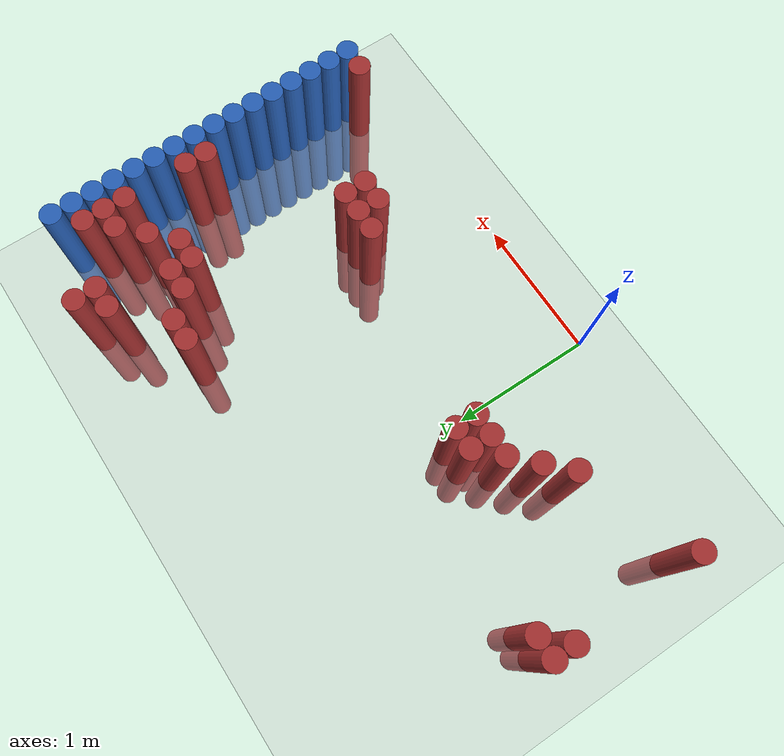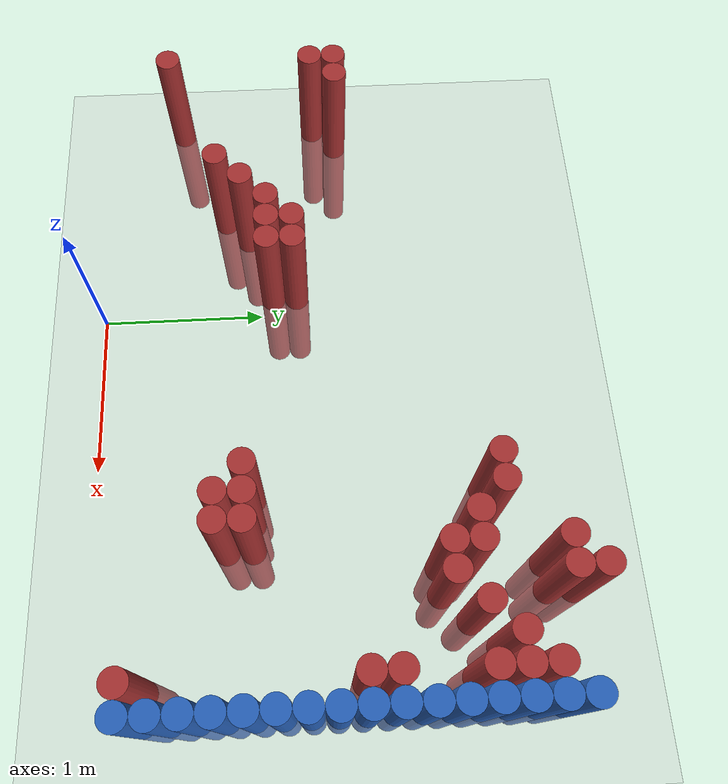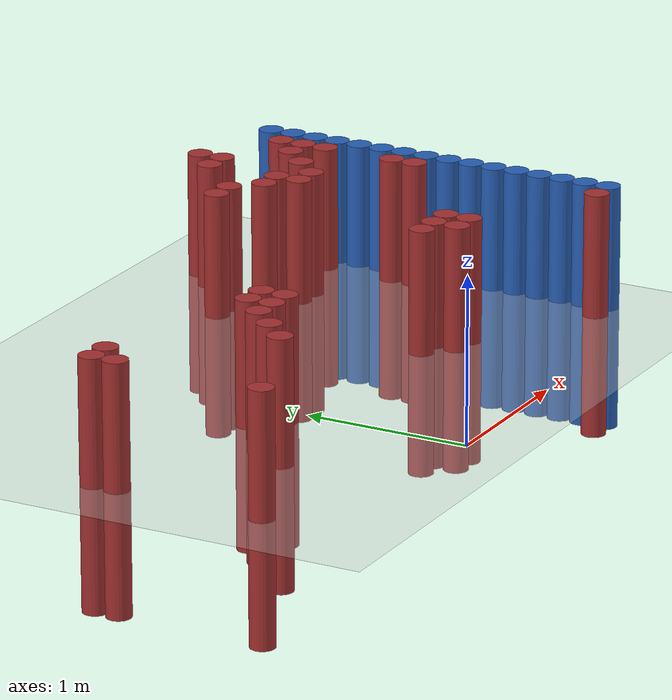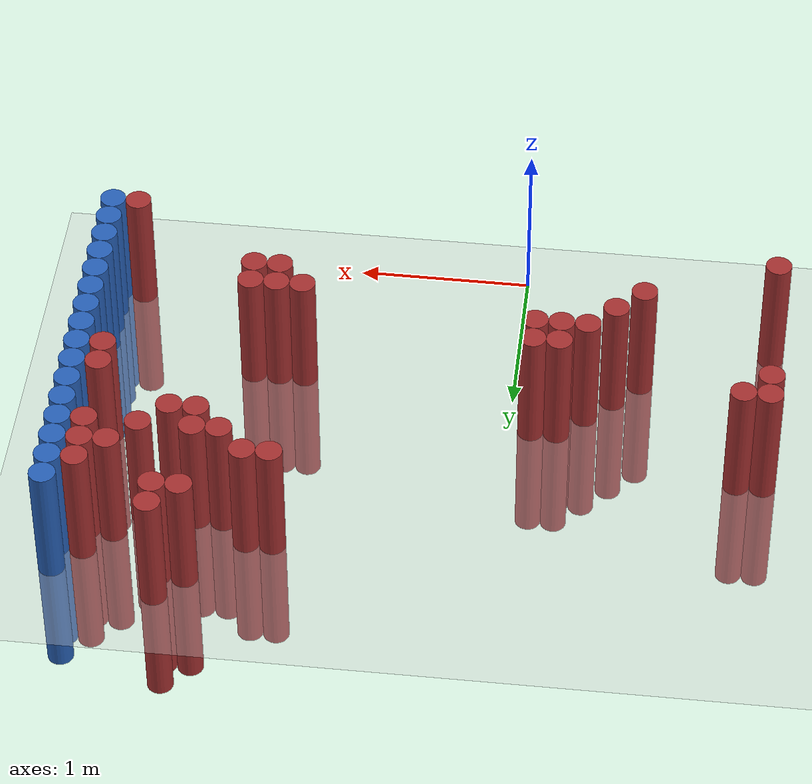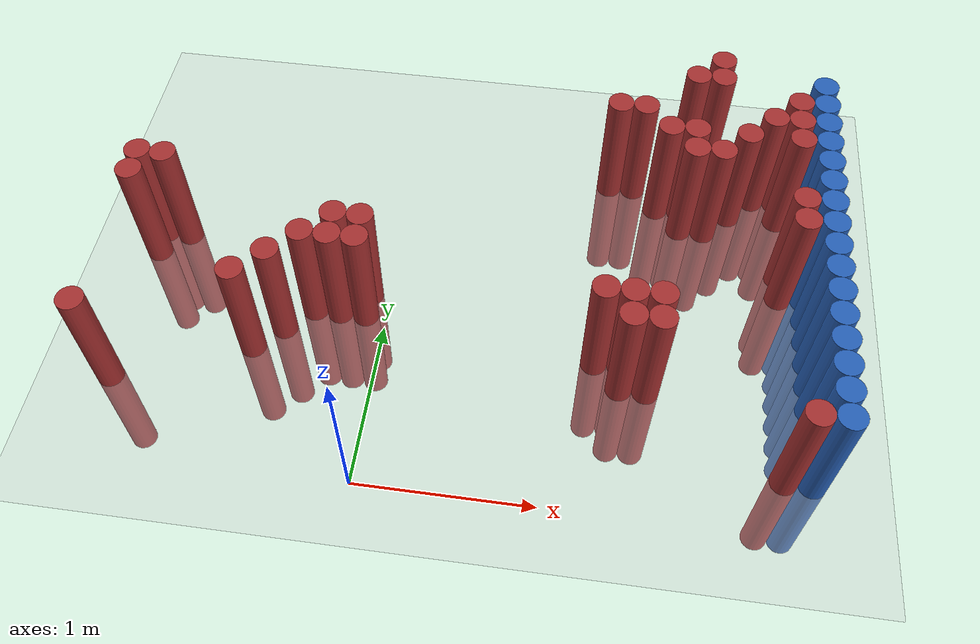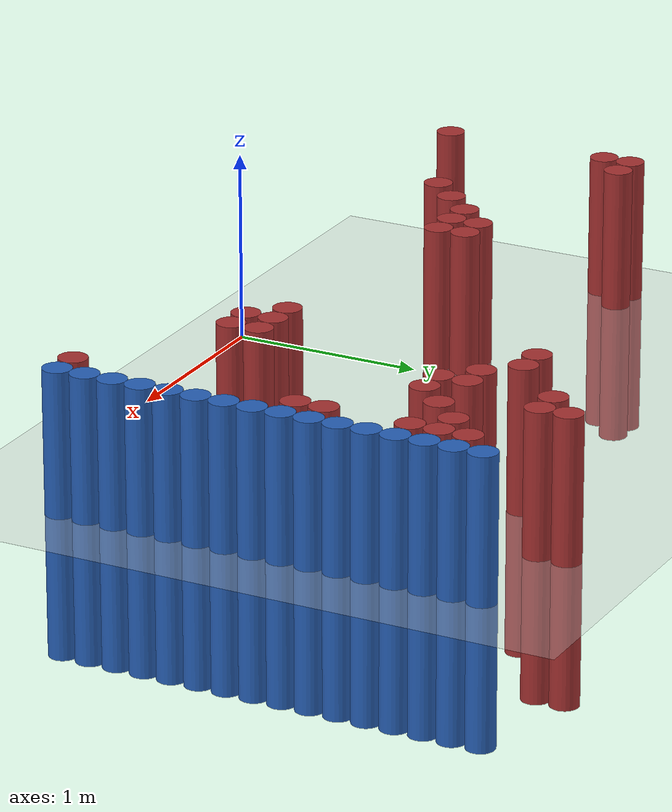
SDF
<sdf version="1.6">
 <world name="default">
  <model name="ground_plane">
   <static>1</static>
   <link name="link">
    <collision name="collision">
     <geometry><plane><normal>0 0 1</normal><size>100 100</size></plane></geometry>
     <surface><friction><ode><mu>100</mu><mu2>50</mu2></ode></friction></surface>
    </collision>
    <visual name="visual">
     <cast_shadows>0</cast_shadows>
     <geometry><plane><normal>0 0 1</normal><size>100 100</size></plane></geometry>
     <material>
      <script><uri>file://media/materials/scripts/gazebo.material</uri><name>Gazebo/Grey</name></script>
     </material>
    </visual>
   </link>
  </model>
  <model name="unit_cylinder_149">
   <static>1</static>
   <pose>-1.475000 0.475000 0.000000 0.000000 0.000000 0.000000</pose>
   <link name="link">
    <inertial>
     <mass>1</mass>
     <inertia><ixx>0.145833</ixx><ixy>0</ixy><ixz>0</ixz><iyy>0.145833</iyy><iyz>0</iyz><izz>0.125</izz></inertia>
    </inertial>
    <collision name="collision">
     <geometry><cylinder><radius>0.075000</radius><length>1.5</length></cylinder></geometry>
    </collision>
    <visual name="visual">
     <geometry><cylinder><radius>0.075000</radius><length>1.5</length></cylinder></geometry>
     <material>
      <ambient>0.648000 0.192000 0.192000 1</ambient>
      <diffuse>0.648000 0.192000 0.192000 1</diffuse>
     </material>
     <material>
      <script><name>Gazebo/Grey</name><uri>file://media/materials/scripts/gazebo.material</uri></script>
     </material>
    </visual>
   </link>
  </model>
  <model name="unit_cylinder_150">
   <static>1</static>
   <pose>-1.475000 1.375000 0.000000 0.000000 0.000000 0.000000</pose>
   <link name="link">
    <inertial>
     <mass>1</mass>
     <inertia><ixx>0.145833</ixx><ixy>0</ixy><ixz>0</ixz><iyy>0.145833</iyy><iyz>0</iyz><izz>0.125</izz></inertia>
    </inertial>
    <collision name="collision">
     <geometry><cylinder><radius>0.075000</radius><length>1.5</length></cylinder></geometry>
    </collision>
    <visual name="visual">
     <geometry><cylinder><radius>0.075000</radius><length>1.5</length></cylinder></geometry>
     <material>
      <ambient>0.648000 0.192000 0.192000 1</ambient>
      <diffuse>0.648000 0.192000 0.192000 1</diffuse>
     </material>
     <material>
      <script><name>Gazebo/Grey</name><uri>file://media/materials/scripts/gazebo.material</uri></script>
     </material>
    </visual>
   </link>
  </model>
  <model name="unit_cylinder_151">
   <static>1</static>
   <pose>-1.475000 1.525000 0.000000 0.000000 0.000000 0.000000</pose>
   <link name="link">
    <inertial>
     <mass>1</mass>
     <inertia><ixx>0.145833</ixx><ixy>0</ixy><ixz>0</ixz><iyy>0.145833</iyy><iyz>0</iyz><izz>0.125</izz></inertia>
    </inertial>
    <collision name="collision">
     <geometry><cylinder><radius>0.075000</radius><length>1.5</length></cylinder></geometry>
    </collision>
    <visual name="visual">
     <geometry><cylinder><radius>0.075000</radius><length>1.5</length></cylinder></geometry>
     <material>
      <ambient>0.648000 0.192000 0.192000 1</ambient>
      <diffuse>0.648000 0.192000 0.192000 1</diffuse>
     </material>
     <material>
      <script><name>Gazebo/Grey</name><uri>file://media/materials/scripts/gazebo.material</uri></script>
     </material>
    </visual>
   </link>
  </model>
  <model name="unit_cylinder_154">
   <static>1</static>
   <pose>-1.325000 1.525000 0.000000 0.000000 0.000000 0.000000</pose>
   <link name="link">
    <inertial>
     <mass>1</mass>
     <inertia><ixx>0.145833</ixx><ixy>0</ixy><ixz>0</ixz><iyy>0.145833</iyy><iyz>0</iyz><izz>0.125</izz></inertia>
    </inertial>
    <collision name="collision">
     <geometry><cylinder><radius>0.075000</radius><length>1.5</length></cylinder></geometry>
    </collision>
    <visual name="visual">
     <geometry><cylinder><radius>0.075000</radius><length>1.5</length></cylinder></geometry>
     <material>
      <ambient>0.648000 0.192000 0.192000 1</ambient>
      <diffuse>0.648000 0.192000 0.192000 1</diffuse>
     </material>
     <material>
      <script><name>Gazebo/Grey</name><uri>file://media/materials/scripts/gazebo.material</uri></script>
     </material>
    </visual>
   </link>
  </model>
  <model name="unit_cylinder_155">
   <static>1</static>
   <pose>-0.725000 0.775000 0.000000 0.000000 0.000000 0.000000</pose>
   <link name="link">
    <inertial>
     <mass>1</mass>
     <inertia><ixx>0.145833</ixx><ixy>0</ixy><ixz>0</ixz><iyy>0.145833</iyy><iyz>0</iyz><izz>0.125</izz></inertia>
    </inertial>
    <collision name="collision">
     <geometry><cylinder><radius>0.075000</radius><length>1.5</length></cylinder></geometry>
    </collision>
    <visual name="visual">
     <geometry><cylinder><radius>0.075000</radius><length>1.5</length></cylinder></geometry>
     <material>
      <ambient>0.648000 0.192000 0.192000 1</ambient>
      <diffuse>0.648000 0.192000 0.192000 1</diffuse>
     </material>
     <material>
      <script><name>Gazebo/Grey</name><uri>file://media/materials/scripts/gazebo.material</uri></script>
     </material>
    </visual>
   </link>
  </model>
  <model name="unit_cylinder_156">
   <static>1</static>
   <pose>-0.575000 0.925000 0.000000 0.000000 0.000000 0.000000</pose>
   <link name="link">
    <inertial>
     <mass>1</mass>
     <inertia><ixx>0.145833</ixx><ixy>0</ixy><ixz>0</ixz><iyy>0.145833</iyy><iyz>0</iyz><izz>0.125</izz></inertia>
    </inertial>
    <collision name="collision">
     <geometry><cylinder><radius>0.075000</radius><length>1.5</length></cylinder></geometry>
    </collision>
    <visual name="visual">
     <geometry><cylinder><radius>0.075000</radius><length>1.5</length></cylinder></geometry>
     <material>
      <ambient>0.648000 0.192000 0.192000 1</ambient>
      <diffuse>0.648000 0.192000 0.192000 1</diffuse>
     </material>
     <material>
      <script><name>Gazebo/Grey</name><uri>file://media/materials/scripts/gazebo.material</uri></script>
     </material>
    </visual>
   </link>
  </model>
  <model name="unit_cylinder_157">
   <static>1</static>
   <pose>-0.425000 1.075000 0.000000 0.000000 0.000000 0.000000</pose>
   <link name="link">
    <inertial>
     <mass>1</mass>
     <inertia><ixx>0.145833</ixx><ixy>0</ixy><ixz>0</ixz><iyy>0.145833</iyy><iyz>0</iyz><izz>0.125</izz></inertia>
    </inertial>
    <collision name="collision">
     <geometry><cylinder><radius>0.075000</radius><length>1.5</length></cylinder></geometry>
    </collision>
    <visual name="visual">
     <geometry><cylinder><radius>0.075000</radius><length>1.5</length></cylinder></geometry>
     <material>
      <ambient>0.648000 0.192000 0.192000 1</ambient>
      <diffuse>0.648000 0.192000 0.192000 1</diffuse>
     </material>
     <material>
      <script><name>Gazebo/Grey</name><uri>file://media/materials/scripts/gazebo.material</uri></script>
     </material>
    </visual>
   </link>
  </model>
  <model name="unit_cylinder_158">
   <static>1</static>
   <pose>-0.275000 1.075000 0.000000 0.000000 0.000000 0.000000</pose>
   <link name="link">
    <inertial>
     <mass>1</mass>
     <inertia><ixx>0.145833</ixx><ixy>0</ixy><ixz>0</ixz><iyy>0.145833</iyy><iyz>0</iyz><izz>0.125</izz></inertia>
    </inertial>
    <collision name="collision">
     <geometry><cylinder><radius>0.075000</radius><length>1.5</length></cylinder></geometry>
    </collision>
    <visual name="visual">
     <geometry><cylinder><radius>0.075000</radius><length>1.5</length></cylinder></geometry>
     <material>
      <ambient>0.648000 0.192000 0.192000 1</ambient>
      <diffuse>0.648000 0.192000 0.192000 1</diffuse>
     </material>
     <material>
      <script><name>Gazebo/Grey</name><uri>file://media/materials/scripts/gazebo.material</uri></script>
     </material>
    </visual>
   </link>
  </model>
  <model name="unit_cylinder_159">
   <static>1</static>
   <pose>-0.275000 1.225000 0.000000 0.000000 0.000000 0.000000</pose>
   <link name="link">
    <inertial>
     <mass>1</mass>
     <inertia><ixx>0.145833</ixx><ixy>0</ixy><ixz>0</ixz><iyy>0.145833</iyy><iyz>0</iyz><izz>0.125</izz></inertia>
    </inertial>
    <collision name="collision">
     <geometry><cylinder><radius>0.075000</radius><length>1.5</length></cylinder></geometry>
    </collision>
    <visual name="visual">
     <geometry><cylinder><radius>0.075000</radius><length>1.5</length></cylinder></geometry>
     <material>
      <ambient>0.648000 0.192000 0.192000 1</ambient>
      <diffuse>0.648000 0.192000 0.192000 1</diffuse>
     </material>
     <material>
      <script><name>Gazebo/Grey</name><uri>file://media/materials/scripts/gazebo.material</uri></script>
     </material>
    </visual>
   </link>
  </model>
  <model name="unit_cylinder_162">
   <static>1</static>
   <pose>-0.125000 1.075000 0.000000 0.000000 0.000000 0.000000</pose>
   <link name="link">
    <inertial>
     <mass>1</mass>
     <inertia><ixx>0.145833</ixx><ixy>0</ixy><ixz>0</ixz><iyy>0.145833</iyy><iyz>0</iyz><izz>0.125</izz></inertia>
    </inertial>
    <collision name="collision">
     <geometry><cylinder><radius>0.075000</radius><length>1.5</length></cylinder></geometry>
    </collision>
    <visual name="visual">
     <geometry><cylinder><radius>0.075000</radius><length>1.5</length></cylinder></geometry>
     <material>
      <ambient>0.648000 0.192000 0.192000 1</ambient>
      <diffuse>0.648000 0.192000 0.192000 1</diffuse>
     </material>
     <material>
      <script><name>Gazebo/Grey</name><uri>file://media/materials/scripts/gazebo.material</uri></script>
     </material>
    </visual>
   </link>
  </model>
  <model name="unit_cylinder_163">
   <static>1</static>
   <pose>-0.125000 1.225000 0.000000 0.000000 0.000000 0.000000</pose>
   <link name="link">
    <inertial>
     <mass>1</mass>
     <inertia><ixx>0.145833</ixx><ixy>0</ixy><ixz>0</ixz><iyy>0.145833</iyy><iyz>0</iyz><izz>0.125</izz></inertia>
    </inertial>
    <collision name="collision">
     <geometry><cylinder><radius>0.075000</radius><length>1.5</length></cylinder></geometry>
    </collision>
    <visual name="visual">
     <geometry><cylinder><radius>0.075000</radius><length>1.5</length></cylinder></geometry>
     <material>
      <ambient>0.648000 0.192000 0.192000 1</ambient>
      <diffuse>0.648000 0.192000 0.192000 1</diffuse>
     </material>
     <material>
      <script><name>Gazebo/Grey</name><uri>file://media/materials/scripts/gazebo.material</uri></script>
     </material>
    </visual>
   </link>
  </model>
  <model name="unit_cylinder_181">
   <static>1</static>
   <pose>1.225000 0.925000 0.000000 0.000000 0.000000 0.000000</pose>
   <link name="link">
    <inertial>
     <mass>1</mass>
     <inertia><ixx>0.145833</ixx><ixy>0</ixy><ixz>0</ixz><iyy>0.145833</iyy><iyz>0</iyz><izz>0.125</izz></inertia>
    </inertial>
    <collision name="collision">
     <geometry><cylinder><radius>0.075000</radius><length>1.5</length></cylinder></geometry>
    </collision>
    <visual name="visual">
     <geometry><cylinder><radius>0.075000</radius><length>1.5</length></cylinder></geometry>
     <material>
      <ambient>0.648000 0.192000 0.192000 1</ambient>
      <diffuse>0.648000 0.192000 0.192000 1</diffuse>
     </material>
     <material>
      <script><name>Gazebo/Grey</name><uri>file://media/materials/scripts/gazebo.material</uri></script>
     </material>
    </visual>
   </link>
  </model>
  <model name="unit_cylinder_182">
   <static>1</static>
   <pose>1.225000 2.275000 0.000000 0.000000 0.000000 0.000000</pose>
   <link name="link">
    <inertial>
     <mass>1</mass>
     <inertia><ixx>0.145833</ixx><ixy>0</ixy><ixz>0</ixz><iyy>0.145833</iyy><iyz>0</iyz><izz>0.125</izz></inertia>
    </inertial>
    <collision name="collision">
     <geometry><cylinder><radius>0.075000</radius><length>1.5</length></cylinder></geometry>
    </collision>
    <visual name="visual">
     <geometry><cylinder><radius>0.075000</radius><length>1.5</length></cylinder></geometry>
     <material>
      <ambient>0.648000 0.192000 0.192000 1</ambient>
      <diffuse>0.648000 0.192000 0.192000 1</diffuse>
     </material>
     <material>
      <script><name>Gazebo/Grey</name><uri>file://media/materials/scripts/gazebo.material</uri></script>
     </material>
    </visual>
   </link>
  </model>
  <model name="unit_cylinder_185">
   <static>1</static>
   <pose>1.375000 0.775000 0.000000 0.000000 0.000000 0.000000</pose>
   <link name="link">
    <inertial>
     <mass>1</mass>
     <inertia><ixx>0.145833</ixx><ixy>0</ixy><ixz>0</ixz><iyy>0.145833</iyy><iyz>0</iyz><izz>0.125</izz></inertia>
    </inertial>
    <collision name="collision">
     <geometry><cylinder><radius>0.075000</radius><length>1.5</length></cylinder></geometry>
    </collision>
    <visual name="visual">
     <geometry><cylinder><radius>0.075000</radius><length>1.5</length></cylinder></geometry>
     <material>
      <ambient>0.648000 0.192000 0.192000 1</ambient>
      <diffuse>0.648000 0.192000 0.192000 1</diffuse>
     </material>
     <material>
      <script><name>Gazebo/Grey</name><uri>file://media/materials/scripts/gazebo.material</uri></script>
     </material>
    </visual>
   </link>
  </model>
  <model name="unit_cylinder_186">
   <static>1</static>
   <pose>1.375000 0.925000 0.000000 0.000000 0.000000 0.000000</pose>
   <link name="link">
    <inertial>
     <mass>1</mass>
     <inertia><ixx>0.145833</ixx><ixy>0</ixy><ixz>0</ixz><iyy>0.145833</iyy><iyz>0</iyz><izz>0.125</izz></inertia>
    </inertial>
    <collision name="collision">
     <geometry><cylinder><radius>0.075000</radius><length>1.5</length></cylinder></geometry>
    </collision>
    <visual name="visual">
     <geometry><cylinder><radius>0.075000</radius><length>1.5</length></cylinder></geometry>
     <material>
      <ambient>0.648000 0.192000 0.192000 1</ambient>
      <diffuse>0.648000 0.192000 0.192000 1</diffuse>
     </material>
     <material>
      <script><name>Gazebo/Grey</name><uri>file://media/materials/scripts/gazebo.material</uri></script>
     </material>
    </visual>
   </link>
  </model>
  <model name="unit_cylinder_187">
   <static>1</static>
   <pose>1.375000 2.275000 0.000000 0.000000 0.000000 0.000000</pose>
   <link name="link">
    <inertial>
     <mass>1</mass>
     <inertia><ixx>0.145833</ixx><ixy>0</ixy><ixz>0</ixz><iyy>0.145833</iyy><iyz>0</iyz><izz>0.125</izz></inertia>
    </inertial>
    <collision name="collision">
     <geometry><cylinder><radius>0.075000</radius><length>1.5</length></cylinder></geometry>
    </collision>
    <visual name="visual">
     <geometry><cylinder><radius>0.075000</radius><length>1.5</length></cylinder></geometry>
     <material>
      <ambient>0.648000 0.192000 0.192000 1</ambient>
      <diffuse>0.648000 0.192000 0.192000 1</diffuse>
     </material>
     <material>
      <script><name>Gazebo/Grey</name><uri>file://media/materials/scripts/gazebo.material</uri></script>
     </material>
    </visual>
   </link>
  </model>
  <model name="unit_cylinder_192">
   <static>1</static>
   <pose>1.525000 0.775000 0.000000 0.000000 0.000000 0.000000</pose>
   <link name="link">
    <inertial>
     <mass>1</mass>
     <inertia><ixx>0.145833</ixx><ixy>0</ixy><ixz>0</ixz><iyy>0.145833</iyy><iyz>0</iyz><izz>0.125</izz></inertia>
    </inertial>
    <collision name="collision">
     <geometry><cylinder><radius>0.075000</radius><length>1.5</length></cylinder></geometry>
    </collision>
    <visual name="visual">
     <geometry><cylinder><radius>0.075000</radius><length>1.5</length></cylinder></geometry>
     <material>
      <ambient>0.648000 0.192000 0.192000 1</ambient>
      <diffuse>0.648000 0.192000 0.192000 1</diffuse>
     </material>
     <material>
      <script><name>Gazebo/Grey</name><uri>file://media/materials/scripts/gazebo.material</uri></script>
     </material>
    </visual>
   </link>
  </model>
  <model name="unit_cylinder_193">
   <static>1</static>
   <pose>1.525000 0.925000 0.000000 0.000000 0.000000 0.000000</pose>
   <link name="link">
    <inertial>
     <mass>1</mass>
     <inertia><ixx>0.145833</ixx><ixy>0</ixy><ixz>0</ixz><iyy>0.145833</iyy><iyz>0</iyz><izz>0.125</izz></inertia>
    </inertial>
    <collision name="collision">
     <geometry><cylinder><radius>0.075000</radius><length>1.5</length></cylinder></geometry>
    </collision>
    <visual name="visual">
     <geometry><cylinder><radius>0.075000</radius><length>1.5</length></cylinder></geometry>
     <material>
      <ambient>0.648000 0.192000 0.192000 1</ambient>
      <diffuse>0.648000 0.192000 0.192000 1</diffuse>
     </material>
     <material>
      <script><name>Gazebo/Grey</name><uri>file://media/materials/scripts/gazebo.material</uri></script>
     </material>
    </visual>
   </link>
  </model>
  <model name="unit_cylinder_194">
   <static>1</static>
   <pose>1.525000 2.125000 0.000000 0.000000 0.000000 0.000000</pose>
   <link name="link">
    <inertial>
     <mass>1</mass>
     <inertia><ixx>0.145833</ixx><ixy>0</ixy><ixz>0</ixz><iyy>0.145833</iyy><iyz>0</iyz><izz>0.125</izz></inertia>
    </inertial>
    <collision name="collision">
     <geometry><cylinder><radius>0.075000</radius><length>1.5</length></cylinder></geometry>
    </collision>
    <visual name="visual">
     <geometry><cylinder><radius>0.075000</radius><length>1.5</length></cylinder></geometry>
     <material>
      <ambient>0.648000 0.192000 0.192000 1</ambient>
      <diffuse>0.648000 0.192000 0.192000 1</diffuse>
     </material>
     <material>
      <script><name>Gazebo/Grey</name><uri>file://media/materials/scripts/gazebo.material</uri></script>
     </material>
    </visual>
   </link>
  </model>
  <model name="unit_cylinder_195">
   <static>1</static>
   <pose>1.675000 1.975000 0.000000 0.000000 0.000000 0.000000</pose>
   <link name="link">
    <inertial>
     <mass>1</mass>
     <inertia><ixx>0.145833</ixx><ixy>0</ixy><ixz>0</ixz><iyy>0.145833</iyy><iyz>0</iyz><izz>0.125</izz></inertia>
    </inertial>
    <collision name="collision">
     <geometry><cylinder><radius>0.075000</radius><length>1.5</length></cylinder></geometry>
    </collision>
    <visual name="visual">
     <geometry><cylinder><radius>0.075000</radius><length>1.5</length></cylinder></geometry>
     <material>
      <ambient>0.648000 0.192000 0.192000 1</ambient>
      <diffuse>0.648000 0.192000 0.192000 1</diffuse>
     </material>
     <material>
      <script><name>Gazebo/Grey</name><uri>file://media/materials/scripts/gazebo.material</uri></script>
     </material>
    </visual>
   </link>
  </model>
  <model name="unit_cylinder_196">
   <static>1</static>
   <pose>1.675000 2.125000 0.000000 0.000000 0.000000 0.000000</pose>
   <link name="link">
    <inertial>
     <mass>1</mass>
     <inertia><ixx>0.145833</ixx><ixy>0</ixy><ixz>0</ixz><iyy>0.145833</iyy><iyz>0</iyz><izz>0.125</izz></inertia>
    </inertial>
    <collision name="collision">
     <geometry><cylinder><radius>0.075000</radius><length>1.5</length></cylinder></geometry>
    </collision>
    <visual name="visual">
     <geometry><cylinder><radius>0.075000</radius><length>1.5</length></cylinder></geometry>
     <material>
      <ambient>0.648000 0.192000 0.192000 1</ambient>
      <diffuse>0.648000 0.192000 0.192000 1</diffuse>
     </material>
     <material>
      <script><name>Gazebo/Grey</name><uri>file://media/materials/scripts/gazebo.material</uri></script>
     </material>
    </visual>
   </link>
  </model>
  <model name="unit_cylinder_197">
   <static>1</static>
   <pose>1.675000 2.575000 0.000000 0.000000 0.000000 0.000000</pose>
   <link name="link">
    <inertial>
     <mass>1</mass>
     <inertia><ixx>0.145833</ixx><ixy>0</ixy><ixz>0</ixz><iyy>0.145833</iyy><iyz>0</iyz><izz>0.125</izz></inertia>
    </inertial>
    <collision name="collision">
     <geometry><cylinder><radius>0.075000</radius><length>1.5</length></cylinder></geometry>
    </collision>
    <visual name="visual">
     <geometry><cylinder><radius>0.075000</radius><length>1.5</length></cylinder></geometry>
     <material>
      <ambient>0.648000 0.192000 0.192000 1</ambient>
      <diffuse>0.648000 0.192000 0.192000 1</diffuse>
     </material>
     <material>
      <script><name>Gazebo/Grey</name><uri>file://media/materials/scripts/gazebo.material</uri></script>
     </material>
    </visual>
   </link>
  </model>
  <model name="unit_cylinder_198">
   <static>1</static>
   <pose>1.825000 1.975000 0.000000 0.000000 0.000000 0.000000</pose>
   <link name="link">
    <inertial>
     <mass>1</mass>
     <inertia><ixx>0.145833</ixx><ixy>0</ixy><ixz>0</ixz><iyy>0.145833</iyy><iyz>0</iyz><izz>0.125</izz></inertia>
    </inertial>
    <collision name="collision">
     <geometry><cylinder><radius>0.075000</radius><length>1.5</length></cylinder></geometry>
    </collision>
    <visual name="visual">
     <geometry><cylinder><radius>0.075000</radius><length>1.5</length></cylinder></geometry>
     <material>
      <ambient>0.648000 0.192000 0.192000 1</ambient>
      <diffuse>0.648000 0.192000 0.192000 1</diffuse>
     </material>
     <material>
      <script><name>Gazebo/Grey</name><uri>file://media/materials/scripts/gazebo.material</uri></script>
     </material>
    </visual>
   </link>
  </model>
  <model name="unit_cylinder_199">
   <static>1</static>
   <pose>1.825000 2.575000 0.000000 0.000000 0.000000 0.000000</pose>
   <link name="link">
    <inertial>
     <mass>1</mass>
     <inertia><ixx>0.145833</ixx><ixy>0</ixy><ixz>0</ixz><iyy>0.145833</iyy><iyz>0</iyz><izz>0.125</izz></inertia>
    </inertial>
    <collision name="collision">
     <geometry><cylinder><radius>0.075000</radius><length>1.5</length></cylinder></geometry>
    </collision>
    <visual name="visual">
     <geometry><cylinder><radius>0.075000</radius><length>1.5</length></cylinder></geometry>
     <material>
      <ambient>0.648000 0.192000 0.192000 1</ambient>
      <diffuse>0.648000 0.192000 0.192000 1</diffuse>
     </material>
     <material>
      <script><name>Gazebo/Grey</name><uri>file://media/materials/scripts/gazebo.material</uri></script>
     </material>
    </visual>
   </link>
  </model>
  <model name="unit_cylinder_200">
   <static>1</static>
   <pose>1.825000 2.725000 0.000000 0.000000 0.000000 0.000000</pose>
   <link name="link">
    <inertial>
     <mass>1</mass>
     <inertia><ixx>0.145833</ixx><ixy>0</ixy><ixz>0</ixz><iyy>0.145833</iyy><iyz>0</iyz><izz>0.125</izz></inertia>
    </inertial>
    <collision name="collision">
     <geometry><cylinder><radius>0.075000</radius><length>1.5</length></cylinder></geometry>
    </collision>
    <visual name="visual">
     <geometry><cylinder><radius>0.075000</radius><length>1.5</length></cylinder></geometry>
     <material>
      <ambient>0.648000 0.192000 0.192000 1</ambient>
      <diffuse>0.648000 0.192000 0.192000 1</diffuse>
     </material>
     <material>
      <script><name>Gazebo/Grey</name><uri>file://media/materials/scripts/gazebo.material</uri></script>
     </material>
    </visual>
   </link>
  </model>
  <model name="unit_cylinder_201">
   <static>1</static>
   <pose>1.975000 2.125000 0.000000 0.000000 0.000000 0.000000</pose>
   <link name="link">
    <inertial>
     <mass>1</mass>
     <inertia><ixx>0.145833</ixx><ixy>0</ixy><ixz>0</ixz><iyy>0.145833</iyy><iyz>0</iyz><izz>0.125</izz></inertia>
    </inertial>
    <collision name="collision">
     <geometry><cylinder><radius>0.075000</radius><length>1.5</length></cylinder></geometry>
    </collision>
    <visual name="visual">
     <geometry><cylinder><radius>0.075000</radius><length>1.5</length></cylinder></geometry>
     <material>
      <ambient>0.648000 0.192000 0.192000 1</ambient>
      <diffuse>0.648000 0.192000 0.192000 1</diffuse>
     </material>
     <material>
      <script><name>Gazebo/Grey</name><uri>file://media/materials/scripts/gazebo.material</uri></script>
     </material>
    </visual>
   </link>
  </model>
  <model name="unit_cylinder_203">
   <static>1</static>
   <pose>2.125000 2.275000 0.000000 0.000000 0.000000 0.000000</pose>
   <link name="link">
    <inertial>
     <mass>1</mass>
     <inertia><ixx>0.145833</ixx><ixy>0</ixy><ixz>0</ixz><iyy>0.145833</iyy><iyz>0</iyz><izz>0.125</izz></inertia>
    </inertial>
    <collision name="collision">
     <geometry><cylinder><radius>0.075000</radius><length>1.5</length></cylinder></geometry>
    </collision>
    <visual name="visual">
     <geometry><cylinder><radius>0.075000</radius><length>1.5</length></cylinder></geometry>
     <material>
      <ambient>0.648000 0.192000 0.192000 1</ambient>
      <diffuse>0.648000 0.192000 0.192000 1</diffuse>
     </material>
     <material>
      <script><name>Gazebo/Grey</name><uri>file://media/materials/scripts/gazebo.material</uri></script>
     </material>
    </visual>
   </link>
  </model>
  <model name="unit_cylinder_208">
   <static>1</static>
   <pose>2.275000 0.325000 0.000000 0.000000 0.000000 0.000000</pose>
   <link name="link">
    <inertial>
     <mass>1</mass>
     <inertia><ixx>0.145833</ixx><ixy>0</ixy><ixz>0</ixz><iyy>0.145833</iyy><iyz>0</iyz><izz>0.125</izz></inertia>
    </inertial>
    <collision name="collision">
     <geometry><cylinder><radius>0.075000</radius><length>1.5</length></cylinder></geometry>
    </collision>
    <visual name="visual">
     <geometry><cylinder><radius>0.075000</radius><length>1.5</length></cylinder></geometry>
     <material>
      <ambient>0.648000 0.192000 0.192000 1</ambient>
      <diffuse>0.648000 0.192000 0.192000 1</diffuse>
     </material>
     <material>
      <script><name>Gazebo/Grey</name><uri>file://media/materials/scripts/gazebo.material</uri></script>
     </material>
    </visual>
   </link>
  </model>
  <model name="unit_cylinder_209">
   <static>1</static>
   <pose>2.275000 1.525000 0.000000 0.000000 0.000000 0.000000</pose>
   <link name="link">
    <inertial>
     <mass>1</mass>
     <inertia><ixx>0.145833</ixx><ixy>0</ixy><ixz>0</ixz><iyy>0.145833</iyy><iyz>0</iyz><izz>0.125</izz></inertia>
    </inertial>
    <collision name="collision">
     <geometry><cylinder><radius>0.075000</radius><length>1.5</length></cylinder></geometry>
    </collision>
    <visual name="visual">
     <geometry><cylinder><radius>0.075000</radius><length>1.5</length></cylinder></geometry>
     <material>
      <ambient>0.648000 0.192000 0.192000 1</ambient>
      <diffuse>0.648000 0.192000 0.192000 1</diffuse>
     </material>
     <material>
      <script><name>Gazebo/Grey</name><uri>file://media/materials/scripts/gazebo.material</uri></script>
     </material>
    </visual>
   </link>
  </model>
  <model name="unit_cylinder_210">
   <static>1</static>
   <pose>2.275000 1.675000 0.000000 0.000000 0.000000 0.000000</pose>
   <link name="link">
    <inertial>
     <mass>1</mass>
     <inertia><ixx>0.145833</ixx><ixy>0</ixy><ixz>0</ixz><iyy>0.145833</iyy><iyz>0</iyz><izz>0.125</izz></inertia>
    </inertial>
    <collision name="collision">
     <geometry><cylinder><radius>0.075000</radius><length>1.5</length></cylinder></geometry>
    </collision>
    <visual name="visual">
     <geometry><cylinder><radius>0.075000</radius><length>1.5</length></cylinder></geometry>
     <material>
      <ambient>0.648000 0.192000 0.192000 1</ambient>
      <diffuse>0.648000 0.192000 0.192000 1</diffuse>
     </material>
     <material>
      <script><name>Gazebo/Grey</name><uri>file://media/materials/scripts/gazebo.material</uri></script>
     </material>
    </visual>
   </link>
  </model>
  <model name="unit_cylinder_211">
   <static>1</static>
   <pose>2.275000 2.125000 0.000000 0.000000 0.000000 0.000000</pose>
   <link name="link">
    <inertial>
     <mass>1</mass>
     <inertia><ixx>0.145833</ixx><ixy>0</ixy><ixz>0</ixz><iyy>0.145833</iyy><iyz>0</iyz><izz>0.125</izz></inertia>
    </inertial>
    <collision name="collision">
     <geometry><cylinder><radius>0.075000</radius><length>1.5</length></cylinder></geometry>
    </collision>
    <visual name="visual">
     <geometry><cylinder><radius>0.075000</radius><length>1.5</length></cylinder></geometry>
     <material>
      <ambient>0.648000 0.192000 0.192000 1</ambient>
      <diffuse>0.648000 0.192000 0.192000 1</diffuse>
     </material>
     <material>
      <script><name>Gazebo/Grey</name><uri>file://media/materials/scripts/gazebo.material</uri></script>
     </material>
    </visual>
   </link>
  </model>
  <model name="unit_cylinder_212">
   <static>1</static>
   <pose>2.275000 2.275000 0.000000 0.000000 0.000000 0.000000</pose>
   <link name="link">
    <inertial>
     <mass>1</mass>
     <inertia><ixx>0.145833</ixx><ixy>0</ixy><ixz>0</ixz><iyy>0.145833</iyy><iyz>0</iyz><izz>0.125</izz></inertia>
    </inertial>
    <collision name="collision">
     <geometry><cylinder><radius>0.075000</radius><length>1.5</length></cylinder></geometry>
    </collision>
    <visual name="visual">
     <geometry><cylinder><radius>0.075000</radius><length>1.5</length></cylinder></geometry>
     <material>
      <ambient>0.648000 0.192000 0.192000 1</ambient>
      <diffuse>0.648000 0.192000 0.192000 1</diffuse>
     </material>
     <material>
      <script><name>Gazebo/Grey</name><uri>file://media/materials/scripts/gazebo.material</uri></script>
     </material>
    </visual>
   </link>
  </model>
  <model name="unit_cylinder_213">
   <static>1</static>
   <pose>2.275000 2.425000 0.000000 0.000000 0.000000 0.000000</pose>
   <link name="link">
    <inertial>
     <mass>1</mass>
     <inertia><ixx>0.145833</ixx><ixy>0</ixy><ixz>0</ixz><iyy>0.145833</iyy><iyz>0</iyz><izz>0.125</izz></inertia>
    </inertial>
    <collision name="collision">
     <geometry><cylinder><radius>0.075000</radius><length>1.5</length></cylinder></geometry>
    </collision>
    <visual name="visual">
     <geometry><cylinder><radius>0.075000</radius><length>1.5</length></cylinder></geometry>
     <material>
      <ambient>0.648000 0.192000 0.192000 1</ambient>
      <diffuse>0.648000 0.192000 0.192000 1</diffuse>
     </material>
     <material>
      <script><name>Gazebo/Grey</name><uri>file://media/materials/scripts/gazebo.material</uri></script>
     </material>
    </visual>
   </link>
  </model>
  <model name="unit_cylinder_220">
   <static>1</static>
   <pose>2.425000 0.325000 0.000000 0.000000 0.000000 0.000000</pose>
   <link name="link">
    <inertial>
     <mass>1</mass>
     <inertia><ixx>0.145833</ixx><ixy>0</ixy><ixz>0</ixz><iyy>0.145833</iyy><iyz>0</iyz><izz>0.125</izz></inertia>
    </inertial>
    <collision name="collision">
     <geometry><cylinder><radius>0.075000</radius><length>1.5</length></cylinder></geometry>
    </collision>
    <visual name="visual">
     <geometry><cylinder><radius>0.075000</radius><length>1.5</length></cylinder></geometry>
     <material>
      <ambient>0.152000 0.379000 0.720000 1</ambient>
      <diffuse>0.152000 0.379000 0.720000 1</diffuse>
     </material>
     <material>
      <script><name>Gazebo/Grey</name><uri>file://media/materials/scripts/gazebo.material</uri></script>
     </material>
    </visual>
   </link>
  </model>
  <model name="unit_cylinder_221">
   <static>1</static>
   <pose>2.425000 0.475000 0.000000 0.000000 0.000000 0.000000</pose>
   <link name="link">
    <inertial>
     <mass>1</mass>
     <inertia><ixx>0.145833</ixx><ixy>0</ixy><ixz>0</ixz><iyy>0.145833</iyy><iyz>0</iyz><izz>0.125</izz></inertia>
    </inertial>
    <collision name="collision">
     <geometry><cylinder><radius>0.075000</radius><length>1.5</length></cylinder></geometry>
    </collision>
    <visual name="visual">
     <geometry><cylinder><radius>0.075000</radius><length>1.5</length></cylinder></geometry>
     <material>
      <ambient>0.152000 0.379000 0.720000 1</ambient>
      <diffuse>0.152000 0.379000 0.720000 1</diffuse>
     </material>
     <material>
      <script><name>Gazebo/Grey</name><uri>file://media/materials/scripts/gazebo.material</uri></script>
     </material>
    </visual>
   </link>
  </model>
  <model name="unit_cylinder_222">
   <static>1</static>
   <pose>2.425000 0.625000 0.000000 0.000000 0.000000 0.000000</pose>
   <link name="link">
    <inertial>
     <mass>1</mass>
     <inertia><ixx>0.145833</ixx><ixy>0</ixy><ixz>0</ixz><iyy>0.145833</iyy><iyz>0</iyz><izz>0.125</izz></inertia>
    </inertial>
    <collision name="collision">
     <geometry><cylinder><radius>0.075000</radius><length>1.5</length></cylinder></geometry>
    </collision>
    <visual name="visual">
     <geometry><cylinder><radius>0.075000</radius><length>1.5</length></cylinder></geometry>
     <material>
      <ambient>0.152000 0.379000 0.720000 1</ambient>
      <diffuse>0.152000 0.379000 0.720000 1</diffuse>
     </material>
     <material>
      <script><name>Gazebo/Grey</name><uri>file://media/materials/scripts/gazebo.material</uri></script>
     </material>
    </visual>
   </link>
  </model>
  <model name="unit_cylinder_223">
   <static>1</static>
   <pose>2.425000 0.775000 0.000000 0.000000 0.000000 0.000000</pose>
   <link name="link">
    <inertial>
     <mass>1</mass>
     <inertia><ixx>0.145833</ixx><ixy>0</ixy><ixz>0</ixz><iyy>0.145833</iyy><iyz>0</iyz><izz>0.125</izz></inertia>
    </inertial>
    <collision name="collision">
     <geometry><cylinder><radius>0.075000</radius><length>1.5</length></cylinder></geometry>
    </collision>
    <visual name="visual">
     <geometry><cylinder><radius>0.075000</radius><length>1.5</length></cylinder></geometry>
     <material>
      <ambient>0.152000 0.379000 0.720000 1</ambient>
      <diffuse>0.152000 0.379000 0.720000 1</diffuse>
     </material>
     <material>
      <script><name>Gazebo/Grey</name><uri>file://media/materials/scripts/gazebo.material</uri></script>
     </material>
    </visual>
   </link>
  </model>
  <model name="unit_cylinder_224">
   <static>1</static>
   <pose>2.425000 0.925000 0.000000 0.000000 0.000000 0.000000</pose>
   <link name="link">
    <inertial>
     <mass>1</mass>
     <inertia><ixx>0.145833</ixx><ixy>0</ixy><ixz>0</ixz><iyy>0.145833</iyy><iyz>0</iyz><izz>0.125</izz></inertia>
    </inertial>
    <collision name="collision">
     <geometry><cylinder><radius>0.075000</radius><length>1.5</length></cylinder></geometry>
    </collision>
    <visual name="visual">
     <geometry><cylinder><radius>0.075000</radius><length>1.5</length></cylinder></geometry>
     <material>
      <ambient>0.152000 0.379000 0.720000 1</ambient>
      <diffuse>0.152000 0.379000 0.720000 1</diffuse>
     </material>
     <material>
      <script><name>Gazebo/Grey</name><uri>file://media/materials/scripts/gazebo.material</uri></script>
     </material>
    </visual>
   </link>
  </model>
  <model name="unit_cylinder_225">
   <static>1</static>
   <pose>2.425000 1.075000 0.000000 0.000000 0.000000 0.000000</pose>
   <link name="link">
    <inertial>
     <mass>1</mass>
     <inertia><ixx>0.145833</ixx><ixy>0</ixy><ixz>0</ixz><iyy>0.145833</iyy><iyz>0</iyz><izz>0.125</izz></inertia>
    </inertial>
    <collision name="collision">
     <geometry><cylinder><radius>0.075000</radius><length>1.5</length></cylinder></geometry>
    </collision>
    <visual name="visual">
     <geometry><cylinder><radius>0.075000</radius><length>1.5</length></cylinder></geometry>
     <material>
      <ambient>0.152000 0.379000 0.720000 1</ambient>
      <diffuse>0.152000 0.379000 0.720000 1</diffuse>
     </material>
     <material>
      <script><name>Gazebo/Grey</name><uri>file://media/materials/scripts/gazebo.material</uri></script>
     </material>
    </visual>
   </link>
  </model>
  <model name="unit_cylinder_226">
   <static>1</static>
   <pose>2.425000 1.225000 0.000000 0.000000 0.000000 0.000000</pose>
   <link name="link">
    <inertial>
     <mass>1</mass>
     <inertia><ixx>0.145833</ixx><ixy>0</ixy><ixz>0</ixz><iyy>0.145833</iyy><iyz>0</iyz><izz>0.125</izz></inertia>
    </inertial>
    <collision name="collision">
     <geometry><cylinder><radius>0.075000</radius><length>1.5</length></cylinder></geometry>
    </collision>
    <visual name="visual">
     <geometry><cylinder><radius>0.075000</radius><length>1.5</length></cylinder></geometry>
     <material>
      <ambient>0.152000 0.379000 0.720000 1</ambient>
      <diffuse>0.152000 0.379000 0.720000 1</diffuse>
     </material>
     <material>
      <script><name>Gazebo/Grey</name><uri>file://media/materials/scripts/gazebo.material</uri></script>
     </material>
    </visual>
   </link>
  </model>
  <model name="unit_cylinder_227">
   <static>1</static>
   <pose>2.425000 1.375000 0.000000 0.000000 0.000000 0.000000</pose>
   <link name="link">
    <inertial>
     <mass>1</mass>
     <inertia><ixx>0.145833</ixx><ixy>0</ixy><ixz>0</ixz><iyy>0.145833</iyy><iyz>0</iyz><izz>0.125</izz></inertia>
    </inertial>
    <collision name="collision">
     <geometry><cylinder><radius>0.075000</radius><length>1.5</length></cylinder></geometry>
    </collision>
    <visual name="visual">
     <geometry><cylinder><radius>0.075000</radius><length>1.5</length></cylinder></geometry>
     <material>
      <ambient>0.152000 0.379000 0.720000 1</ambient>
      <diffuse>0.152000 0.379000 0.720000 1</diffuse>
     </material>
     <material>
      <script><name>Gazebo/Grey</name><uri>file://media/materials/scripts/gazebo.material</uri></script>
     </material>
    </visual>
   </link>
  </model>
  <model name="unit_cylinder_228">
   <static>1</static>
   <pose>2.425000 1.525000 0.000000 0.000000 0.000000 0.000000</pose>
   <link name="link">
    <inertial>
     <mass>1</mass>
     <inertia><ixx>0.145833</ixx><ixy>0</ixy><ixz>0</ixz><iyy>0.145833</iyy><iyz>0</iyz><izz>0.125</izz></inertia>
    </inertial>
    <collision name="collision">
     <geometry><cylinder><radius>0.075000</radius><length>1.5</length></cylinder></geometry>
    </collision>
    <visual name="visual">
     <geometry><cylinder><radius>0.075000</radius><length>1.5</length></cylinder></geometry>
     <material>
      <ambient>0.152000 0.379000 0.720000 1</ambient>
      <diffuse>0.152000 0.379000 0.720000 1</diffuse>
     </material>
     <material>
      <script><name>Gazebo/Grey</name><uri>file://media/materials/scripts/gazebo.material</uri></script>
     </material>
    </visual>
   </link>
  </model>
  <model name="unit_cylinder_229">
   <static>1</static>
   <pose>2.425000 1.675000 0.000000 0.000000 0.000000 0.000000</pose>
   <link name="link">
    <inertial>
     <mass>1</mass>
     <inertia><ixx>0.145833</ixx><ixy>0</ixy><ixz>0</ixz><iyy>0.145833</iyy><iyz>0</iyz><izz>0.125</izz></inertia>
    </inertial>
    <collision name="collision">
     <geometry><cylinder><radius>0.075000</radius><length>1.5</length></cylinder></geometry>
    </collision>
    <visual name="visual">
     <geometry><cylinder><radius>0.075000</radius><length>1.5</length></cylinder></geometry>
     <material>
      <ambient>0.152000 0.379000 0.720000 1</ambient>
      <diffuse>0.152000 0.379000 0.720000 1</diffuse>
     </material>
     <material>
      <script><name>Gazebo/Grey</name><uri>file://media/materials/scripts/gazebo.material</uri></script>
     </material>
    </visual>
   </link>
  </model>
  <model name="unit_cylinder_230">
   <static>1</static>
   <pose>2.425000 1.825000 0.000000 0.000000 0.000000 0.000000</pose>
   <link name="link">
    <inertial>
     <mass>1</mass>
     <inertia><ixx>0.145833</ixx><ixy>0</ixy><ixz>0</ixz><iyy>0.145833</iyy><iyz>0</iyz><izz>0.125</izz></inertia>
    </inertial>
    <collision name="collision">
     <geometry><cylinder><radius>0.075000</radius><length>1.5</length></cylinder></geometry>
    </collision>
    <visual name="visual">
     <geometry><cylinder><radius>0.075000</radius><length>1.5</length></cylinder></geometry>
     <material>
      <ambient>0.152000 0.379000 0.720000 1</ambient>
      <diffuse>0.152000 0.379000 0.720000 1</diffuse>
     </material>
     <material>
      <script><name>Gazebo/Grey</name><uri>file://media/materials/scripts/gazebo.material</uri></script>
     </material>
    </visual>
   </link>
  </model>
  <model name="unit_cylinder_231">
   <static>1</static>
   <pose>2.425000 1.975000 0.000000 0.000000 0.000000 0.000000</pose>
   <link name="link">
    <inertial>
     <mass>1</mass>
     <inertia><ixx>0.145833</ixx><ixy>0</ixy><ixz>0</ixz><iyy>0.145833</iyy><iyz>0</iyz><izz>0.125</izz></inertia>
    </inertial>
    <collision name="collision">
     <geometry><cylinder><radius>0.075000</radius><length>1.5</length></cylinder></geometry>
    </collision>
    <visual name="visual">
     <geometry><cylinder><radius>0.075000</radius><length>1.5</length></cylinder></geometry>
     <material>
      <ambient>0.152000 0.379000 0.720000 1</ambient>
      <diffuse>0.152000 0.379000 0.720000 1</diffuse>
     </material>
     <material>
      <script><name>Gazebo/Grey</name><uri>file://media/materials/scripts/gazebo.material</uri></script>
     </material>
    </visual>
   </link>
  </model>
  <model name="unit_cylinder_232">
   <static>1</static>
   <pose>2.425000 2.125000 0.000000 0.000000 0.000000 0.000000</pose>
   <link name="link">
    <inertial>
     <mass>1</mass>
     <inertia><ixx>0.145833</ixx><ixy>0</ixy><ixz>0</ixz><iyy>0.145833</iyy><iyz>0</iyz><izz>0.125</izz></inertia>
    </inertial>
    <collision name="collision">
     <geometry><cylinder><radius>0.075000</radius><length>1.5</length></cylinder></geometry>
    </collision>
    <visual name="visual">
     <geometry><cylinder><radius>0.075000</radius><length>1.5</length></cylinder></geometry>
     <material>
      <ambient>0.152000 0.379000 0.720000 1</ambient>
      <diffuse>0.152000 0.379000 0.720000 1</diffuse>
     </material>
     <material>
      <script><name>Gazebo/Grey</name><uri>file://media/materials/scripts/gazebo.material</uri></script>
     </material>
    </visual>
   </link>
  </model>
  <model name="unit_cylinder_233">
   <static>1</static>
   <pose>2.425000 2.275000 0.000000 0.000000 0.000000 0.000000</pose>
   <link name="link">
    <inertial>
     <mass>1</mass>
     <inertia><ixx>0.145833</ixx><ixy>0</ixy><ixz>0</ixz><iyy>0.145833</iyy><iyz>0</iyz><izz>0.125</izz></inertia>
    </inertial>
    <collision name="collision">
     <geometry><cylinder><radius>0.075000</radius><length>1.5</length></cylinder></geometry>
    </collision>
    <visual name="visual">
     <geometry><cylinder><radius>0.075000</radius><length>1.5</length></cylinder></geometry>
     <material>
      <ambient>0.152000 0.379000 0.720000 1</ambient>
      <diffuse>0.152000 0.379000 0.720000 1</diffuse>
     </material>
     <material>
      <script><name>Gazebo/Grey</name><uri>file://media/materials/scripts/gazebo.material</uri></script>
     </material>
    </visual>
   </link>
  </model>
  <model name="unit_cylinder_234">
   <static>1</static>
   <pose>2.425000 2.425000 0.000000 0.000000 0.000000 0.000000</pose>
   <link name="link">
    <inertial>
     <mass>1</mass>
     <inertia><ixx>0.145833</ixx><ixy>0</ixy><ixz>0</ixz><iyy>0.145833</iyy><iyz>0</iyz><izz>0.125</izz></inertia>
    </inertial>
    <collision name="collision">
     <geometry><cylinder><radius>0.075000</radius><length>1.5</length></cylinder></geometry>
    </collision>
    <visual name="visual">
     <geometry><cylinder><radius>0.075000</radius><length>1.5</length></cylinder></geometry>
     <material>
      <ambient>0.152000 0.379000 0.720000 1</ambient>
      <diffuse>0.152000 0.379000 0.720000 1</diffuse>
     </material>
     <material>
      <script><name>Gazebo/Grey</name><uri>file://media/materials/scripts/gazebo.material</uri></script>
     </material>
    </visual>
   </link>
  </model>
  <model name="unit_cylinder_235">
   <static>1</static>
   <pose>2.425000 2.575000 0.000000 0.000000 0.000000 0.000000</pose>
   <link name="link">
    <inertial>
     <mass>1</mass>
     <inertia><ixx>0.145833</ixx><ixy>0</ixy><ixz>0</ixz><iyy>0.145833</iyy><iyz>0</iyz><izz>0.125</izz></inertia>
    </inertial>
    <collision name="collision">
     <geometry><cylinder><radius>0.075000</radius><length>1.5</length></cylinder></geometry>
    </collision>
    <visual name="visual">
     <geometry><cylinder><radius>0.075000</radius><length>1.5</length></cylinder></geometry>
     <material>
      <ambient>0.152000 0.379000 0.720000 1</ambient>
      <diffuse>0.152000 0.379000 0.720000 1</diffuse>
     </material>
     <material>
      <script><name>Gazebo/Grey</name><uri>file://media/materials/scripts/gazebo.material</uri></script>
     </material>
    </visual>
   </link>
  </model>
 </world>
</sdf>
